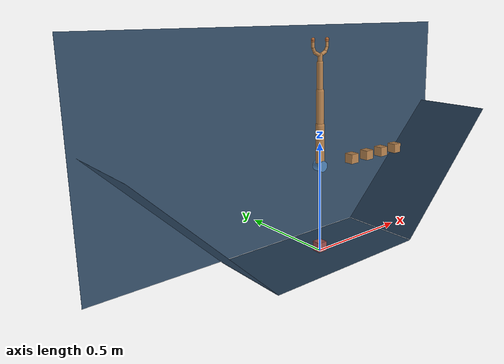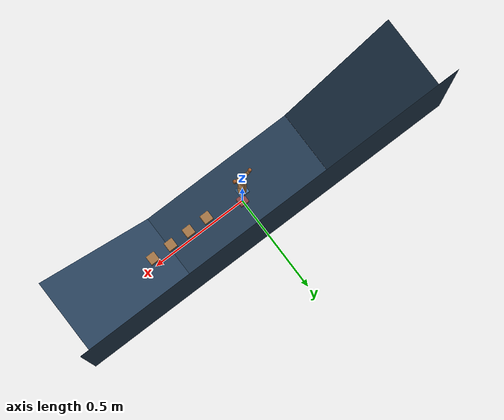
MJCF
<mujoco model="planar stacker">

  <include file="./common/visual.xml"/>
  <include file="./common/skybox.xml"/>
  <include file="./common/materials.xml"/>
  <asset>
    <texture name="background" builtin="flat" type="2d" mark="random" markrgb="1 1 1" width="800" height="800" rgb1=".2 .3 .4"/>
    <material name="background" texture="background" texrepeat="1 1" texuniform="true"/>
  </asset>

  <visual>
    <map shadowclip=".5"/>
    <quality shadowsize="2048"/>
  </visual>>

  <option timestep="0.001" cone="elliptic"/>

  <default>
    <geom friction=".7" solimp="0.9 0.97 0.001" solref=".01 1"/>
    <joint solimplimit="0 0.99 0.01" solreflimit=".005 1"/>
    <general ctrllimited="true"/>
    <tendon width="0.01"/>
    <site size=".003 .003 .003" rgba=".5 .5 .5 .3" group="3"/>

    <default class="arm">
      <geom type="capsule" material="self" density="500"/>
      <joint type="hinge" pos="0 0 0" axis="0 -1 0" limited="true"/>
      <default class="hand">
        <joint damping=".5" range="-10 60"/>
        <geom size=".008"/>
        <site  type="box" size=".018 .005 .005" pos=".022 0 -.002" euler="0 15 0" group="4"/>
        <default class="fingertip">
          <geom type="sphere" size=".008" material="effector"/>
          <joint damping=".01" stiffness=".01" range="-40 20"/>
          <site  size=".012 .005 .008" pos=".003 0 .003" group="4" euler="0 0 0"/>
        </default>
      </default>
    </default>

    <default class="object">
      <geom material="self"/>
    </default>

    <default class="task">
      <site rgba="0 0 0 0"/>
    </default>

    <default class="obstacle">
      <geom material="decoration" friction="0"/>
    </default>

    <default class="ghost">
      <geom material="target" contype="0" conaffinity="0"/>
    </default>
  </default>

  <worldbody>
    <!-- Arena -->
    <light name="light" directional="true" diffuse=".6 .6 .6" pos="0 0 1" specular=".3 .3 .3"/>
    <geom name="floor" type="plane" pos="0 0 0" size=".4 .2 10" material="grid"/>
    <geom name="wall1" type="plane" pos="-.682843 0 .282843" size=".4 .2 10" material="grid" zaxis="1 0 1"/>
    <geom name="wall2" type="plane" pos=".682843 0 .282843" size=".4 .2 10" material="grid" zaxis="-1 0 1"/>
    <geom name="background" type="plane" pos="0 .2 .5" size="1 .5 10" material="background" zaxis="0 -1 0"/>
    <camera name="fixed" pos="0 -16 .4" xyaxes="1 0 0 0 0 1" fovy="4"/>

    <!-- Arm -->
    <geom name="arm_root" type="cylinder" fromto="0 -.022 .4 0 .022 .4" size=".024"
          material="decoration" contype="0" conaffinity="0"/>
    <body name="upper_arm" pos="0 0 .4" childclass="arm">
      <joint name="arm_root" damping="2" limited="false"/>
      <geom  name="upper_arm"  size=".02" fromto="0 0 0 0 0 .18"/>
      <body  name="middle_arm" pos="0 0 .18" childclass="arm">
        <joint name="arm_shoulder" damping="1.5" range="-160 160"/>
        <geom  name="middle_arm"  size=".017" fromto="0 0 0 0 0 .15"/>
        <body  name="lower_arm" pos="0 0 .15">
          <joint name="arm_elbow" damping="1" range="-160 160"/>
          <geom  name="lower_arm" size=".014" fromto="0 0 0 0 0 .12"/>
          <body  name="hand" pos="0 0 .12">
            <joint name="arm_wrist" damping=".5" range="-140 140" />
            <geom  name="hand" size=".011" fromto="0 0 0 0 0 .03"/>
            <geom  name="palm1"  fromto="0 0 .03  .03 0 .045" class="hand"/>
            <geom  name="palm2"  fromto="0 0 .03 -.03 0 .045" class="hand"/>
            <site  name="grasp" pos="0 0 .065"/>
            <body  name="pinch site" pos="0 0 .090">
              <site  name="pinch"/>
              <inertial pos="0 0 0" mass="1e-6" diaginertia="1e-12 1e-12 1e-12"/>
              <camera name="hand" pos="0 -.3 0" xyaxes="1 0 0 0 0 1" mode="track"/>
            </body>
            <site  name="palm_touch" type="box" group="4" size=".025 .005 .008" pos="0 0 .043"/>

            <body name="thumb" pos=".03 0 .045" euler="0 -90 0" childclass="hand">
              <joint name="thumb"/>
              <geom  name="thumb1"  fromto="0 0 0 .02 0 -.01" size=".007"/>
              <geom  name="thumb2"  fromto=".02 0 -.01 .04 0 -.01" size=".007"/>
              <site  name="thumb_touch" group="4"/>
              <body  name="thumbtip" pos=".05 0 -.01" childclass="fingertip">
                <joint name="thumbtip"/>
                <geom  name="thumbtip1" pos="-.003 0 0" />
                <geom  name="thumbtip2" pos=".003 0 0" />
                <site  name="thumbtip_touch" group="4"/>
              </body>
            </body>

            <body name="finger" pos="-.03 0 .045" euler="0 90 180" childclass="hand">
              <joint name="finger"/>
              <geom  name="finger1"  fromto="0 0 0 .02 0 -.01" size=".007" />
              <geom  name="finger2"  fromto=".02 0 -.01 .04 0 -.01" size=".007"/>
              <site  name="finger_touch"/>
              <body  name="fingertip" pos=".05 0 -.01" childclass="fingertip">
                <joint name="fingertip"/>
                <geom  name="fingertip1" pos="-.003 0 0" />
                <geom  name="fingertip2" pos=".003 0 0" />
                <site  name="fingertip_touch"/>
              </body>
            </body>
          </body>
        </body>
      </body>
    </body>

    <!-- props -->
    <body name="box0" pos=".5 0 .4" childclass="object">
      <joint name="box0_x" type="slide" axis="1 0 0" ref=".5"/>
      <joint name="box0_z" type="slide" axis="0 0 1" ref=".4"/>
      <joint name="box0_y" type="hinge" axis="0 1 0"/>
      <geom  name="box0" type="box" size=".022 .022 .022" />
      <site  name="box0" type="sphere"/>
    </body>

    <body name="box1" pos=".4 0 .4" childclass="object">
      <joint name="box1_x" type="slide" axis="1 0 0" ref=".4"/>
      <joint name="box1_z" type="slide" axis="0 0 1" ref=".4"/>
      <joint name="box1_y" type="hinge" axis="0 1 0"/>
      <geom  name="box1" type="box" size=".022 .022 .022" />
      <site  name="box1" type="sphere"/>
    </body>

    <body name="box2" pos=".3 0 .4" childclass="object">
      <joint name="box2_x" type="slide" axis="1 0 0" ref=".3"/>
      <joint name="box2_z" type="slide" axis="0 0 1" ref=".4"/>
      <joint name="box2_y" type="hinge" axis="0 1 0"/>
      <geom  name="box2" type="box" size=".022 .022 .022" />
      <site  name="box2" type="sphere"/>
    </body>

    <body name="box3" pos=".2 0 .4" childclass="object">
      <joint name="box3_x" type="slide" axis="1 0 0" ref=".2"/>
      <joint name="box3_z" type="slide" axis="0 0 1" ref=".4"/>
      <joint name="box3_y" type="hinge" axis="0 1 0"/>
      <geom  name="box3" type="box" size=".022 .022 .022" />
      <site  name="box3" type="sphere"/>
    </body>

    <!-- targets -->
    <body name="target" pos="0 .001 .022" childclass="ghost">
      <geom  name="target" type="box" size=".022 .022 .022" />
      <site  name="target" type="sphere"/>
    </body>
  </worldbody>

  <tendon>
    <fixed name="grasp">
      <joint joint="thumb"  coef=".5"/>
      <joint joint="finger" coef=".5"/>
    </fixed>
    <fixed name="coupling">
      <joint joint="thumb"  coef="-.5"/>
      <joint joint="finger" coef=".5"/>
    </fixed>
  </tendon>

  <equality>
    <tendon name="coupling" tendon1="coupling" solimp="0.95 0.99 0.001" solref=".005 .5"/>
  </equality>

  <sensor>
    <touch name="palm_touch" site="palm_touch"/>
    <touch name="finger_touch" site="finger_touch"/>
    <touch name="thumb_touch" site="thumb_touch"/>
    <touch name="fingertip_touch" site="fingertip_touch"/>
    <touch name="thumbtip_touch" site="thumbtip_touch"/>
  </sensor>

  <actuator>
    <motor name="root"     joint="arm_root"     ctrlrange="-1 1"  gear="12"/>
    <motor name="shoulder" joint="arm_shoulder" ctrlrange="-1 1"  gear="8"/>
    <motor name="elbow"    joint="arm_elbow"    ctrlrange="-1 1"  gear="4"/>
    <motor name="wrist"    joint="arm_wrist"    ctrlrange="-1 1"  gear="2"/>
    <motor name="grasp"    tendon="grasp"       ctrlrange="-1 1"  gear="2"/>
  </actuator>

</mujoco>

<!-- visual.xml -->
<mujoco>
  <visual>
    <headlight ambient=".4 .4 .4" diffuse=".8 .8 .8" specular="0.1 0.1 0.1"/>
    <map znear=".01"/>
    <quality shadowsize="2048"/>
  </visual>
</mujoco>

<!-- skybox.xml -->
<mujoco>
  <asset>
      <texture name="skybox" type="skybox" builtin="gradient" rgb1=".4 .6 .8" rgb2="0 0 0"
               width="800" height="800" mark="random" markrgb="1 1 1"/>
  </asset>
</mujoco>

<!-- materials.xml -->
<!--
Common textures, colors and materials to be used throughout this suite. Some
materials such as xxx_highlight are activated on occurence of certain events,
for example receiving a positive reward.
-->
<mujoco>
  <asset>
    <texture name="grid" type="2d" builtin="checker" rgb1=".1 .2 .3" rgb2=".2 .3 .4" width="300" height="300" mark="edge" markrgb=".2 .3 .4"/>
    <material name="grid" texture="grid" texrepeat="1 1" texuniform="true" reflectance=".2"/>
    <material name="self" rgba=".7 .5 .3 1"/>
    <material name="self_default" rgba=".7 .5 .3 1"/>
    <material name="self_highlight" rgba="0 .5 .3 1"/>
    <material name="effector" rgba=".7 .4 .2 1"/>
    <material name="effector_default" rgba=".7 .4 .2 1"/>
    <material name="effector_highlight" rgba="0 .5 .3 1"/>
    <material name="decoration" rgba=".3 .5 .7 1"/>
    <material name="eye" rgba="0 .2 1 1"/>
    <material name="target" rgba=".6 .3 .3 1"/>
    <material name="target_default" rgba=".6 .3 .3 1"/>
    <material name="target_highlight" rgba=".6 .3 .3 .4"/>
  </asset>
</mujoco>
